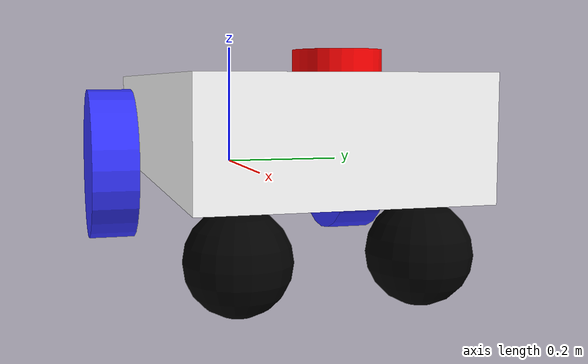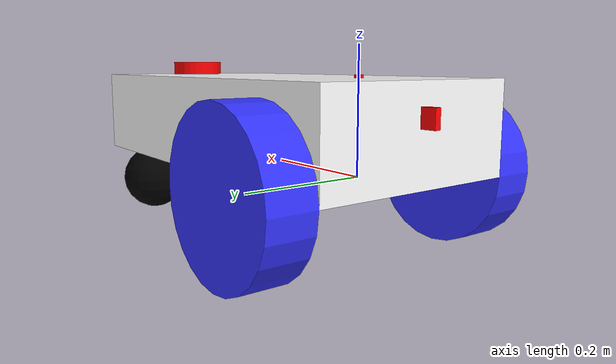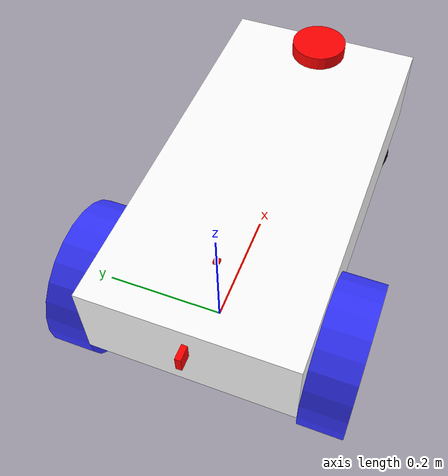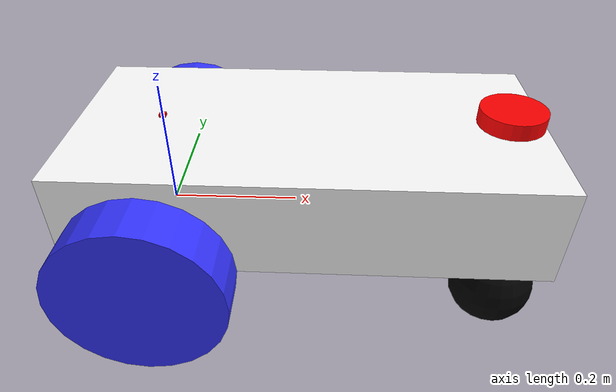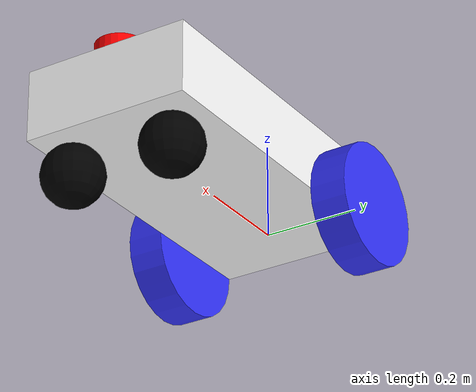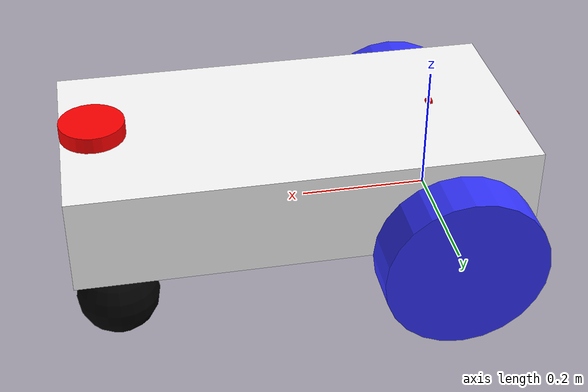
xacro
<?xml version="1.0"?>
<robot xmlns:xacro="http://www.ros.org/wiki/xacro"  name="robot">

<!-- This is the main robot description file which pulls robot core, sensors, and control schemes together.-->
 <!-- Everything could be here in one large file, but this approach is more organized and adaptable.-->

    <xacro:include filename="robot_core.xacro" /> <!--Base robot model-->
    <xacro:include filename="ros2_control.xacro"/>
    <xacro:include filename="lidar.xacro" />
    <xacro:include filename="rear_camera.xacro" />
    <!--Disabled depth camera for performance reasons-->
    <xacro:include filename="imu.xacro" />

</robot>

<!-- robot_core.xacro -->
<robot xmlns:xacro="http://www.ros.org/wiki/xacro">

<!--This defines the physical structure and properties of the robot.-->

        <!-- Chassis Variables (all in meters/kg) -->
    <xacro:property name="box_length" value="0.7"/> <!--Adjust footprint to reflect changes here-->
    <xacro:property name="box_width" value="0.35"/>
    <xacro:property name="box_height" value="0.15"/>
    <xacro:property name="box_mass" value="10"/>

    <xacro:property name="wheel_width" value="0.075"/> <!--Adjust footprint to reflect changes here-->
    <xacro:property name="wheel_radius" value="0.127"/>
    <xacro:property name="wheel_offset" value="${box_width/2 + wheel_width/2}"/>
    <xacro:property name="wheel_mass" value="1.0"/> <!--kg-->
    <xacro:property name="wheel_torque" value="50"/>
    <xacro:property name="wheel_speed" value="5.0"/> <!--rad/s-->

    <xacro:property name="caster_radius" value="0.0635"/>
    <xacro:property name="caster_Xoffset" value="${box_length - caster_radius}"/>
    <xacro:property name="caster_Yoffset" value="${box_width/2 - caster_radius}"/>
    <xacro:property name="caster_Zoffset" value="${-wheel_radius + caster_radius}"/>
    <xacro:property name="caster_mass" value="0.5"/>

    <xacro:include filename="inertial_macros.xacro" />

    <!--BASE LINK-->
    <link name="base_link">
    </link>

        <!-- BASE_FOOTPRINT -->
        <!--The base location in flat 2D since the robot will be changing elevation-->
    <joint name="base_footprint_joint" type="fixed">
        <parent link="base_link"/>
        <child link="base_footprint"/>
        <origin xyz="0 0 -${wheel_radius}" rpy="0 0 0"/>
    </joint>

    <link name="base_footprint">
    </link>

    <!-- Chassis -->

    <joint name="chassis_joint" type="fixed">
        <parent link="base_link"/>
        <child link="chassis"/>
        <origin xyz="-${wheel_radius} 0 0"/>
    </joint>

    <link name="chassis">
        <visual>
            <origin xyz="${box_length / 2.0} 0 ${box_height / 2.0}" rpy="0 0 0"/>
            <geometry>
                <box size="${box_length} ${box_width} ${box_height}"/>
            </geometry>
            <material name="white"/>
        </visual>
        <collision>
             <origin xyz="${box_length / 2.0} 0 ${box_height / 2.0}" rpy="0 0 0"/>
            <geometry>
                <box size="${box_length} ${box_width} ${box_height}"/>
            </geometry>
        </collision>
        <xacro:inertial_box mass="${box_mass}" x="${box_length}" y="${box_width}" z="${box_height}">
            <origin xyz="${box_length / 2.0} 0 ${box_height / 2.0}" rpy="0 0 0"/>
        </xacro:inertial_box>
    </link>

    <!-- LEFT WHEEL -->

    <joint name="left_wheel_joint" type="continuous">
        <parent link="base_link"/>
        <child link="left_wheel"/>
        <origin xyz="0 ${wheel_offset} 0" rpy="-${pi/2} 0 0"/>
        <axis xyz="0 0 1"/>
        <limit effort="${wheel_torque}" velocity="${wheel_speed}"/>

    </joint>

    <link name="left_wheel">
        <visual>
            <geometry>
                <cylinder length="${wheel_width}" radius="${wheel_radius}" />
            </geometry>
            <material name="blue"/>
        </visual>
        <collision>
            <geometry>
                <sphere radius="${wheel_radius}" /> <!--Sphere for friction/simulation purposes-->
            </geometry>
        </collision>
        <xacro:inertial_cylinder mass="${wheel_mass}" length="${wheel_width}" radius="${wheel_radius}">
            <origin xyz="0 0 0" rpy="0 0 0"/>
        </xacro:inertial_cylinder>
    </link>

    <gazebo reference="left_wheel">
        <!--Fricition parameters-->
        <mu1 value="0.7"/>
        <mu2 value="0.7"/>
    </gazebo>

    <!-- RIGHT WHEEL -->

    <joint name="right_wheel_joint" type="continuous">
        <parent link="base_link"/>
        <child link="right_wheel"/>
        <origin xyz="0 -${wheel_offset} 0" rpy="${pi/2} 0 0"/>
        <axis xyz="0 0 -1"/>
        <limit effort="${wheel_torque}" velocity="${wheel_speed}"/>
    </joint>

    <link name="right_wheel">
        <visual>
            <geometry>
                <cylinder length="${wheel_width}" radius="${wheel_radius}" />
            </geometry>
            <material name="blue"/>
        </visual>
        <collision>
            <geometry>
                <sphere radius="${wheel_radius}" /> <!--Sphere for friction/simulation purposes-->
            </geometry>
        </collision>
        <xacro:inertial_cylinder mass="${wheel_mass}" length="${wheel_width}" radius="${wheel_radius}">
            <origin xyz="0 0 0" rpy="0 0 0"/>
        </xacro:inertial_cylinder>
    </link>

    <gazebo reference="right_wheel">
        <!--Fricition parameters-->
        <mu1 value="0.7"/>
        <mu2 value="0.7"/>
    </gazebo>

    <!-- LEFT CASTER WHEEL -->

    <joint name="left_caster_wheel_joint" type="fixed">
        <parent link="chassis"/>
        <child link="left_caster_wheel"/>
        <origin xyz="${caster_Xoffset} ${caster_Yoffset} ${caster_Zoffset}" rpy="0 0 0"/>
    </joint>

    <link name="left_caster_wheel">
        <visual>
            <geometry>
                <sphere radius="${caster_radius}" />
            </geometry>
            <material name="black"/>
        </visual>
        <collision>
            <geometry>
                <sphere radius="${caster_radius}" />
            </geometry>
        </collision>
        <xacro:inertial_sphere mass="${caster_mass}" radius="${caster_radius}">
            <origin xyz="0 0 0" rpy="0 0 0"/>
        </xacro:inertial_sphere>
    </link>

    <gazebo reference="left_caster_wheel">
        <!--Friction parameters-->
        <mu1 value="0.0"/>
        <mu2 value="0.0"/>
    </gazebo>

       <!-- RIGHT CASTER WHEEL -->

    <joint name="right_caster_wheel_joint" type="fixed">
        <parent link="chassis"/>
        <child link="right_caster_wheel"/>
        <origin xyz="${caster_Xoffset} ${-caster_Yoffset} ${caster_Zoffset}" rpy="0 0 0"/>
    </joint>

    <link name="right_caster_wheel">
        <visual>
            <geometry>
                <sphere radius="${caster_radius}" />
            </geometry>
            <material name="black"/>
        </visual>
        <collision>
            <geometry>
                <sphere radius="${caster_radius}" />
            </geometry>
        </collision>
        <xacro:inertial_sphere mass="${caster_mass}" radius="${caster_radius}">
            <origin xyz="0 0 0" rpy="0 0 0"/>
        </xacro:inertial_sphere>
    </link>

    <gazebo reference="right_caster_wheel">
        <!--Fricition parameters-->
        <mu1 value="0.0"/>
        <mu2 value="0.0"/>
    </gazebo>

        <material name="white">
        <color rgba="1 1 1 1"/>
    </material>

    <material name="orange">
        <color rgba="1 0.3 0.1 1"/>
    </material>

    <material name="blue">
        <color rgba="0.2 0.2 1 1"/>
    </material>

    <material name="black">
        <color rgba="0 0 0 1"/>
    </material>

    <material name="red">
        <color rgba="1 0 0 1"/>
    </material>

</robot>

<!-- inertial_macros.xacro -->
<robot xmlns:xacro="http://www.ros.org/wiki/xacro" >

    <!-- Macros to make physics calculations simpler -->
    <!-- Specify some standard inertial calculations https://en.wikipedia.org/wiki/List_of_moments_of_inertia -->
    <!-- These make use of xacro's mathematical functionality -->

    <xacro:macro name="inertial_sphere" params="mass radius *origin">
        <inertial>
            <xacro:insert_block name="origin"/>
            <mass value="${mass}" />
            <inertia ixx="${(2/5) * mass * (radius*radius)}" ixy="0.0" ixz="0.0"
                    iyy="${(2/5) * mass * (radius*radius)}" iyz="0.0"
                    izz="${(2/5) * mass * (radius*radius)}" />
        </inertial>
    </xacro:macro>

    <xacro:macro name="inertial_box" params="mass x y z *origin">
        <inertial>
            <xacro:insert_block name="origin"/>
            <mass value="${mass}" />
            <inertia ixx="${(1/12) * mass * (y*y+z*z)}" ixy="0.0" ixz="0.0"
                    iyy="${(1/12) * mass * (x*x+z*z)}" iyz="0.0"
                    izz="${(1/12) * mass * (x*x+y*y)}" />
        </inertial>
    </xacro:macro>

    <xacro:macro name="inertial_cylinder" params="mass length radius *origin">
        <inertial>
            <xacro:insert_block name="origin"/>
            <mass value="${mass}" />
            <inertia ixx="${(1/12) * mass * (3*radius*radius + length*length)}" ixy="0.0" ixz="0.0"
                    iyy="${(1/12) * mass * (3*radius*radius + length*length)}" iyz="0.0"
                    izz="${(1/2) * mass * (radius*radius)}" />
        </inertial>
    </xacro:macro>

</robot>

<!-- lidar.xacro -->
<robot xmlns:xacro="http://www.ros.org/wiki/xacro" >

<!--LIDAR description for the robot-->
<!--Includes orientation, locations, various properties, and simulation instructions for Gazebo-->

    <!-- Lidar's urdf-->
    <joint name="laser_joint" type="fixed">
        <parent link="chassis"/>
        <child link="laser_frame"/>
        <origin xyz=".65 0 0.15" rpy="0 0 0"/>
    </joint>

    <link name="laser_frame">
        <visual>
            <geometry>
                <cylinder radius="0.05" length="0.05"/>
            </geometry>
            <material name="red"/>
        </visual>
        <collision>
            <geometry>
                <cylinder radius="0.05" length="0.05"/>
            </geometry>
        </collision>
        <xacro:inertial_cylinder mass="0.1" length="0.05" radius="0.05">
            <origin xyz="0 0 0" rpy="0 0 0"/>
        </xacro:inertial_cylinder>
    </link>

    <!-- 2D Lidar New Gazebo Sensor Plugin  -->
     <gazebo reference="laser_frame">
        <sensor name="laser" type="gpu_lidar">
            <pose> 0 0 0 0 0 0 </pose>
            <visualize>false</visualize>
            <update_rate>10</update_rate>
            <lidar>
                <scan>
                    <horizontal>
                        <samples>360</samples>
                        <min_angle>-3.14</min_angle>
                        <max_angle>3.14</max_angle>
                    </horizontal>
                </scan>
                <range>
                    <min>0.3</min>
                    <max>20</max>
                </range>
            </lidar>
            <topic>scan</topic>
            <gz_frame_id>laser_frame</gz_frame_id>
        </sensor>
    </gazebo>

</robot>

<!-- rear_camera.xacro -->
<robot xmlns:xacro="http://www.ros.org/wiki/xacro">

<!--Camera description for the robot-->
<!--Includes orientation, locations, various properties, and simulation instructions for Gazebo-->

    <joint name="rear_camera_joint" type="fixed">
        <parent link="chassis"/>
        <child link="rear_camera_link"/>
        <origin xyz="-0.01 0 0.1" rpy="0 0 ${pi/2}"/> <!--Faces backwards-->
    </joint>

    <!--This is the camera body in ROS coordinate standard-->
    <link name="rear_camera_link">
        <visual>
            <geometry>
              <box size="0.01 0.03 0.03"/>
            </geometry>
            <material name="red"/>
        </visual>
        <collision>
          <geometry>
              <box size="0.010 0.03 0.03"/>
          </geometry>
        </collision>
        <xacro:inertial_box mass="0.1" x="0.01" y="0.03" z="0.03">
            <origin xyz="0 0 0" rpy="0 0 0"/>
        </xacro:inertial_box>
  </link>

  <!--This rotates the camera image orientation to match
  ROS coordinate standards-->
    <joint name="rear_camera_optical_joint" type="fixed">
        <origin xyz="0 0 0" rpy="${-pi/2} 0 ${-pi/2}" />
        <parent link="rear_camera_link" />
        <child link="rear_camera_link_optical" />
    </joint>
    <link name="rear_camera_link_optical"></link>

<!--Gazebo plugin-->
    <gazebo reference="rear_camera_link">
        <sensor name="rear_camera" type="camera">
            <pose> -0.01 0 0 0 0 ${pi/2} </pose> <!--Faces backwards-->
            <visualize>true</visualize>
            <update_rate>10</update_rate>
            <camera>
                <camera_info_topic>rear_camera/camera_info</camera_info_topic>
                <horizontal_fov>1.089</horizontal_fov>
                <image>
                    <format>R8G8B8</format>
                    <width>640</width>
                    <height>480</height>
                </image>
                <clip>
                    <near>0.05</near>
                    <far>8.0</far>
                </clip>
            </camera>
            <topic>rear_camera/image_raw</topic>
            <gz_frame_id>rear_camera_link_optical</gz_frame_id>
        </sensor>
    </gazebo>

</robot>

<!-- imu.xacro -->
<robot xmlns:xacro="http://www.ros.org/wiki/xacro">

<!--Inertial Measurement Unit sensor description for the robot-->
<!--Includes orientation, locations, various properties, and simulation instructions for Gazebo-->

    <joint name="imu_joint" type="fixed">
        <parent link="base_link"/>
        <child link="imu_link"/>
        <origin xyz="0.0 0.0 0.15" rpy="0 0 0"/>
    </joint>

  <link name="imu_link">
    <visual>
      <geometry>
        <box size="0.010 0.01 0.01"/>
      </geometry>
      <material name="red"/>
    </visual>

    <collision>
     <geometry>
      <box size="0.01 0.01 0.01"/>
     </geometry>
    </collision>
    <xacro:inertial_box mass="0.1" x="0.01" y="0.01" z="0.01">
     <origin xyz="0 0 0" rpy="0 0 0"/>
    </xacro:inertial_box>

    <sensor name="imu_sensor" type="imu">
     <always_on>true</always_on>
     <update_rate>100</update_rate>
     <visualize>true</visualize>
     <topic>imu</topic>
     <gz_frame_id>imu_link</gz_frame_id>
     <imu>
      <angular_velocity>
      <x>
        <noise type="gaussian">
         <mean>0.0</mean>
         <stddev>2e-4</stddev>
         <bias_mean>0.0000075</bias_mean>
         <bias_stddev>0.0000008</bias_stddev>
        </noise>
      </x>
      <y>
        <noise type="gaussian">
         <mean>0.0</mean>
         <stddev>2e-4</stddev>
         <bias_mean>0.0000075</bias_mean>
         <bias_stddev>0.0000008</bias_stddev>
        </noise>
      </y>
       <z>
        <noise type="gaussian">
         <mean>0.0</mean>
         <stddev>2e-4</stddev>
         <bias_mean>0.0000075</bias_mean>
         <bias_stddev>0.0000008</bias_stddev>
        </noise>
       </z>
      </angular_velocity>
      <linear_acceleration>
       <x>
        <noise type="gaussian">
         <mean>0.0</mean>
         <stddev>1.7e-2</stddev>
         <bias_mean>0.1</bias_mean>
         <bias_stddev>0.001</bias_stddev>
        </noise>
       </x>
       <y>
        <noise type="gaussian">
         <mean>0.0</mean>
         <stddev>1.7e-2</stddev>
         <bias_mean>0.1</bias_mean>
         <bias_stddev>0.001</bias_stddev>
        </noise>
       </y>
       <z>
        <noise type="gaussian">
         <mean>0.0</mean>
         <stddev>1.7e-2</stddev>
         <bias_mean>0.1</bias_mean>
         <bias_stddev>0.001</bias_stddev>
        </noise>
       </z>
      </linear_acceleration>
     </imu>
    </sensor>
  </link>

<!--Gazebo plugin-->
    <gazebo reference="imu_link">
        <sensor name="imu_sensor" type="imu">
          <always_on>1</always_on>
          <update_rate>10</update_rate>
         <visualize>true</visualize>
         <topic>/imu</topic>
         <gz_frame_id>imu_link</gz_frame_id>

        </sensor>
    </gazebo>

</robot>
